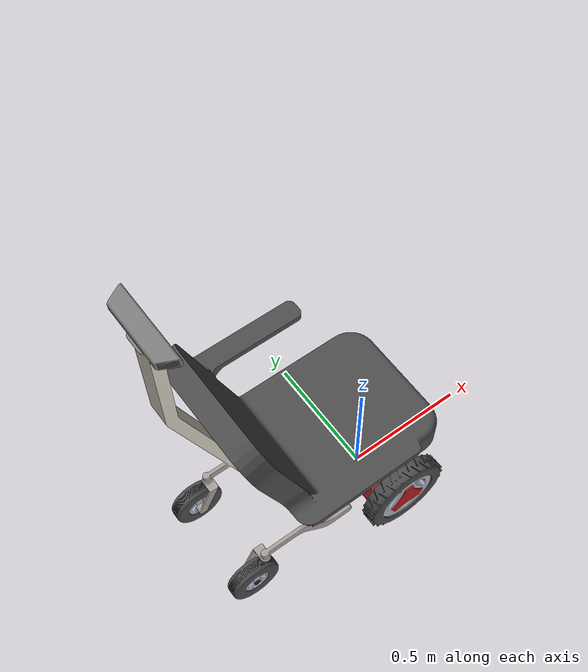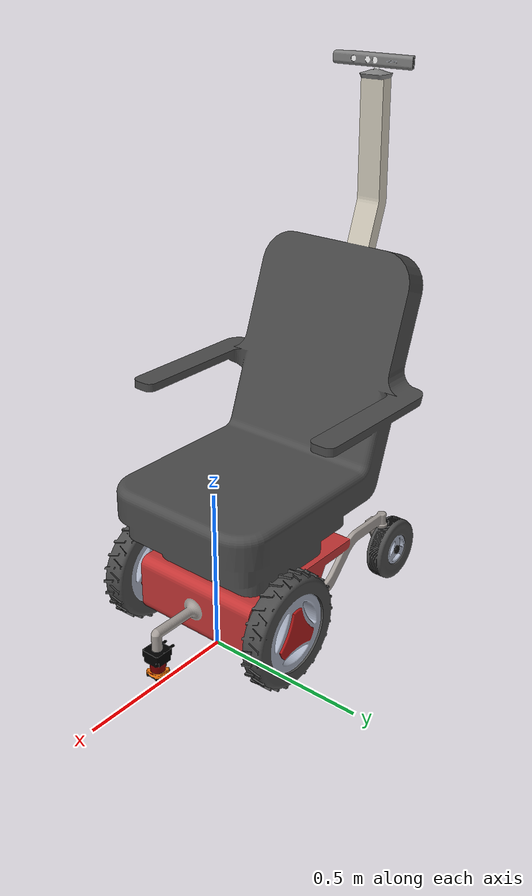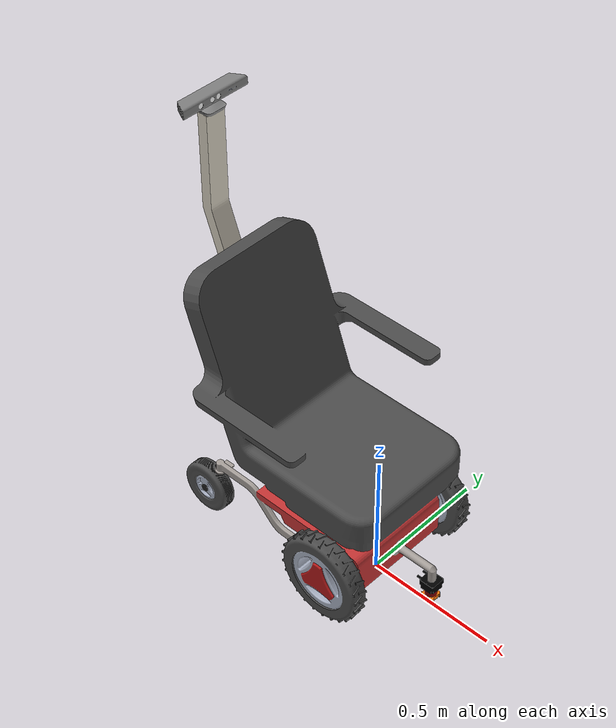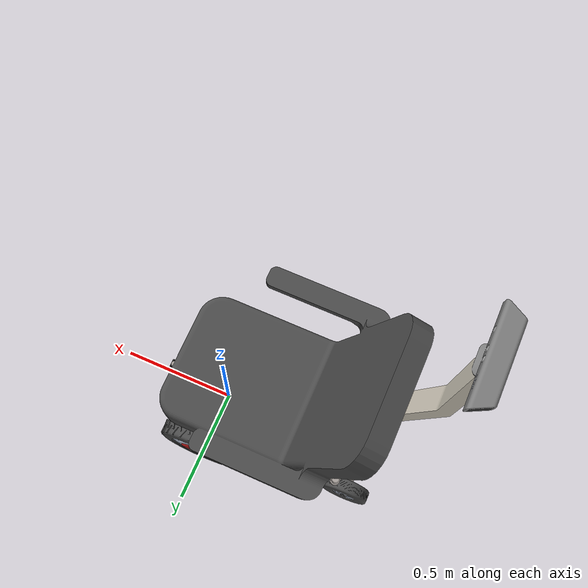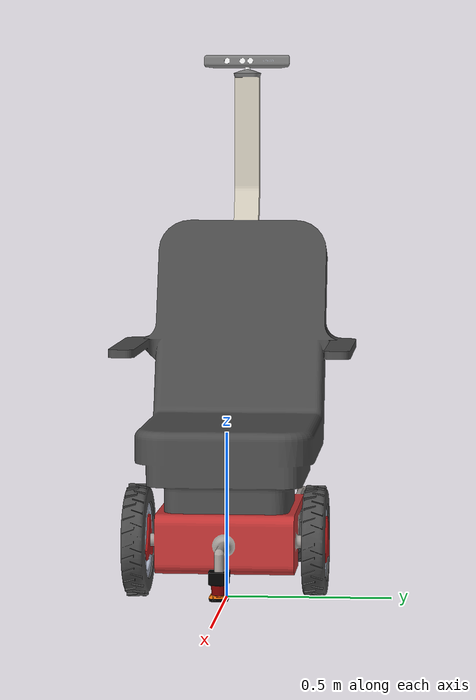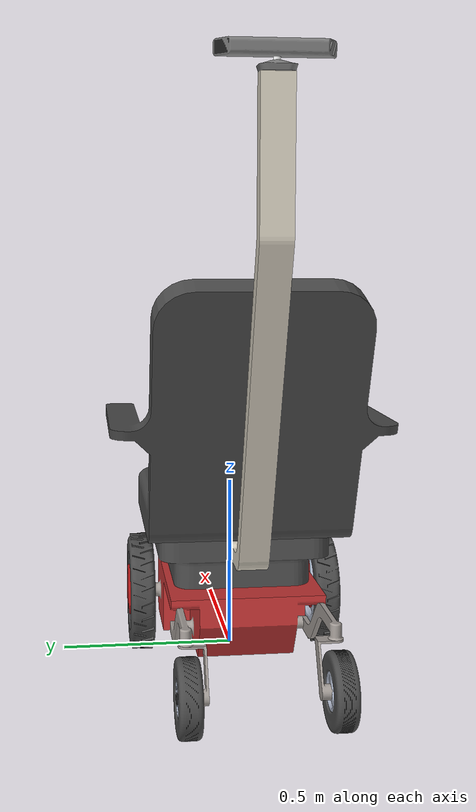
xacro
<?xml version="1.0"?>

<robot name="newchair5"
       xmlns:sensor="http://playerstage.sourceforge.net/gazebo/xmlschema/#sensor"
       xmlns:controller="http://playerstage.sourceforge.net/gazebo/xmlschema/#controller"
       xmlns:interface="http://playerstage.sourceforge.net/gazebo/xmlschema/#interface"
       xmlns:xacro="http://www.ros.org/wiki/xacro" >

  <xacro:include filename="$(find newchair5)/urdf/base.urdf.xacro" />

  <xacro:wheelchair_base />

</robot>

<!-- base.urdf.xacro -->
<robot xmlns:sensor="http://playerstage.sourceforge.net/gazebo/xmlschema/#sensor"
       xmlns:controller="http://playerstage.sourceforge.net/gazebo/xmlschema/#controller"
       xmlns:interface="http://playerstage.sourceforge.net/gazebo/xmlschema/#interface"
       xmlns:xacro="http://www.ros.org/wiki/xacro">

  <xacro:include filename="$(find newchair5)/urdf/wheelchair.gazebo.xacro" />
  <xacro:include filename="$(find newchair5)/urdf/wheelchair.transmission.xacro" />
  <xacro:include filename="$(find newchair5)/urdf/wheelchair.constants.xacro" />
  <xacro:include filename="$(find newchair5)/urdf/wheelchair.kinect.xacro" />
  <xacro:include filename="$(find newchair5)/urdf/wheelchair.hokuyo.xacro" />

  <property name="PI" value="3.1415926535897931" />

  <property name="front_wheel_radius" value="0.17" />
  <property name="front_wheel_base_y" value="0.27" />
  <property name="caster_wheel_radius" value="0.1" />
  <property name="caster_wheel_hub_y" value="0.0" />
  <property name="caster_wheel_hub_x" value="-0.06" />
  <property name="caster_hub_base_x" value="-0.58" />
  <property name="caster_hub_base_y" value="0.19" />
  <property name="caster_hub_base_z" value="-0.07" />
  <property name="kinectx" value="-0.72" />
  <property name="kinecty" value="0.0" />
  <property name="kinectz" value="1.41" />

  <wheelchair_kinect_single parent="base_link" roll="0.025" pitch="0.25" yaw="0.0" x="${kinectx}" y="${kinecty}" z="${kinectz}" />

  <wheelchair_hokuyo parent="base_link" roll="${PI}" pitch="0.0" yaw=" 0.0" x="0.25" y="0.0" z="-0.1" />

  <!-- Macro for front wheel only -->
  <xacro:macro name="front_wheel" params="suffix parent reflect" >

    <joint name="${parent}_${suffix}_front_wheel_joint" type="continuous">
      <axis xyz="0 1 0" />
      <limit effort="100" velocity="100" />
      <dynamics damping="0.0" friction="0.05" />
      <origin xyz="0 ${reflect*front_wheel_base_y} 0" rpy="0 0 0" />
      <parent link="${parent}_link" />
      <child link="${suffix}_front_wheel_link" />
    </joint>

    <link name="${suffix}_front_wheel_link" >
      <xacro:front_wheel_inertia />
      <visual>
        <geometry>

          <mesh filename="package://newchair5/meshes/front_wheel.dae" />
        </geometry>
      </visual>
      <collision>
        <origin xyz="0 0 0" rpy="${PI/2} 0 0" />
        <geometry>
          <cylinder length="0.07" radius="${front_wheel_radius}" />
        </geometry>
      </collision>
    </link>

    <xacro:front_wheel_gazebo suffix="${suffix}" />
    <xacro:front_wheel_transmission parent="${parent}" suffix="${suffix}" reflect="${reflect}" />

  </xacro:macro>

  <!-- Macro for caster wheel only -->
  <xacro:macro name="caster_wheel" params="suffix parent reflect" >

    <joint name="${parent}_${suffix}_caster_wheel_joint" type="continuous" >
      <axis xyz="0 1 0" />

      <dynamics damping="0.0" friction="0.02" />
      <origin xyz="${reflect*caster_wheel_hub_x} 0 0" rpy="0 0 0" />
      <parent link="${parent}_link" />
      <child link="${suffix}_caster_wheel_link" />
    </joint>

    <link name="${suffix}_caster_wheel_link" >
      <xacro:caster_wheel_inertia />
      <visual>
        <geometry>
          <mesh filename="package://newchair5/meshes/caster_wheel.dae" />
        </geometry>
      </visual>
      <collision>
        <origin xyz="0 0 0" rpy="${PI/2} 0 0" />
        <geometry>
          <cylinder length="0.038" radius="${caster_wheel_radius}" />
         </geometry>
      </collision>
    </link>

    <xacro:caster_wheel_gazebo suffix="${suffix}" />

  </xacro:macro>

  <!-- Macro for caster hub only -->
  <xacro:macro name="caster_hub" params="suffix parent *origin reflect" >

    <joint name="${parent}_${suffix}_caster_hub_joint" type="continuous" >
      <axis xyz="0 0 1" />
      <dynamics damping="0.0" friction="0.0" />
      <insert_block name="origin" />
      <parent link="${parent}_link"/>
      <child link="${suffix}_caster_hub_link" />
    </joint>

    <link name="${suffix}_caster_hub_link" value="${suffix}" >

        <xacro:caster_hub_inertia lr="${reflect}"/>

      <visual>
        <geometry>
          <mesh filename="package://newchair5/meshes/caster_hub_${suffix}.dae" />
        </geometry>
      </visual>
      <collision>
        <origin xyz="0 0 0" rpy="0 0 0" />
        <geometry>
          <mesh filename="package://newchair5/meshes/caster_hub_${suffix}.dae" />
        </geometry>
      </collision>
    </link>

    <xacro:caster_hub_gazebo suffix="${suffix}" />

  </xacro:macro>

  <!-- Macro for caster set (caster wheel & hub) -->
  <xacro:macro name="caster_set" params="suffix parent *origin reflect" >

    <xacro:caster_hub suffix="${suffix}" parent="${parent}" reflect="${reflect}">
      <insert_block name="origin" />
    </xacro:caster_hub>

    <xacro:caster_wheel suffix="${suffix}" parent="${suffix}_caster_hub" reflect="${reflect}" />

  </xacro:macro>

  <!-- Macro for wheelchair_base (includes front & caster wheels and wheelchair body) -->
  <xacro:macro name="wheelchair_base" >

    <link name="base_footprint" >
      <visual>
        <origin xyz="0 0 0" rpy="0 0 0" />
        <geometry>
          <box size="0.01 0.01 0.01" />
        </geometry>
      </visual>
    </link>

    <joint name="base_footprint_joint" type="fixed" >
      <origin xyz="0 0 ${front_wheel_radius}" rpy="0 0 0" />
      <child link="base_link" />
      <parent link="base_footprint" />
    </joint>

    <link name="base_link" >
      <xacro:wheelchair_base_inertia />
      <visual>
        <geometry>
          <mesh filename="package://newchair5/meshes/wheelchair_base_seat.dae" />
        </geometry>
      </visual>
      <collision>
        <origin xyz="0 0 0" rpy="0 0 0" />
        <geometry>
          <mesh filename="package://newchair5/meshes/wheelchair_base_seat.dae" />
        </geometry>
      </collision>
    </link>

    <xacro:front_wheel suffix="left" parent="base" reflect="1" />
    <xacro:front_wheel suffix="right" parent="base" reflect="-1" />

    <xacro:caster_set suffix="left" parent="base" reflect="1" >
      <origin xyz="${caster_hub_base_x} ${caster_hub_base_y} ${caster_hub_base_z}"
              rpy="0 0 0" />
    </xacro:caster_set>
    <xacro:caster_set suffix="right" parent="base" reflect="-1" >
      <origin xyz="${caster_hub_base_x} ${-caster_hub_base_y} ${caster_hub_base_z}"
              rpy="0 0 ${PI}" />
    </xacro:caster_set>

    <xacro:wheelchair_base_gazebo diameter="${2*front_wheel_radius}" separation="${2*front_wheel_base_y}" />

  </xacro:macro>

  <!-- Original Testing Macro for front wheels only -->

  <!-- Original Testing Macro for wheelchair_base (includes front & caster wheels and wheelchair body) -->

</robot>

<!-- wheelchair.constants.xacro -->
<robot xmlns:xacro="http://www.ros.org/wiki/xacro">

   <xacro:macro name="front_wheel_inertia" >

      <inertial>
        <mass value="0.5" />
        <origin xyz="0 0 0" />
        <inertia  ixx="0.005" ixy="0.0" ixz="0.0"
                  iyy="0.005" iyz="0.0" izz="0.005" />
      </inertial>

   </xacro:macro>

   <xacro:macro name="caster_wheel_inertia" >

      <inertial>
        <mass value="0.07" />
        <origin xyz="0 0 0" />
        <inertia  ixx="0.001" ixy="0.0" ixz="0.0"
                  iyy="0.001" iyz="0.0" izz="0.001" />
      </inertial>

   </xacro:macro>

   <xacro:macro name="caster_hub_inertia" params="lr">

      <inertial>
        <mass value="0.015" />
        <origin xyz="${lr*-0.043126} 0.030993 0.053064" />
        <inertia  ixx="0.001" ixy="0.0" ixz="0.0"
                  iyy="0.001" iyz="0.0" izz="0.001" />
      </inertial>

   </xacro:macro>

   <xacro:macro name="wheelchair_base_inertia" >

      <inertial>
        <mass value="5.0" />
        <origin xyz="-0.15 0.000000 0.1" />
        <inertia  ixx="0.011469" ixy="0.0" ixz="0.005697"
                  iyy="0.015320" iyz="0.0" izz="0.008542" />
      </inertial>

   </xacro:macro>

</robot>

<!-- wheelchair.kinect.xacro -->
<robot
    xmlns:sensor="http://playerstage.sourceforge.net/gazebo/xmlschema/#sensor"
    xmlns:controller="http://playerstage.sourceforge.net/gazebo/xmlschema/#controller"
    xmlns:interface="http://playerstage.sourceforge.net/gazebo/xmlschema/#interface"
    xmlns:xacro="http://www.ros.org/wiki/xacro">
  <property name="M_PI" value="3.14159"/>

<macro name="wheelchair_kinect_single" params="parent roll pitch yaw x y z">
  <joint name="base_camera_yaw_joint" type="fixed">
    <origin xyz="${x} ${y} ${z}" rpy="0 0 ${yaw}" />
    <parent link="${parent}"/>
    <child link="camera_link_yaw" />
  </joint>

  <link name="camera_link_yaw">
    <inertial>
      <mass value="0.01" />
      <origin xyz="0 0 0" rpy="0.0 0.0 0.0" />
      <inertia ixx="0.001" ixy="0.0" ixz="0.0"
        iyy="0.001" iyz="0.0"
        izz="0.001" />
    </inertial>
  </link>

  <joint name="base_camera_pitch_joint" type="fixed">
    <origin xyz="0 0 0" rpy="0 ${pitch} 0" />
    <parent link="camera_link_yaw"/>
    <child link="camera_link_pitch" />
  </joint>

  <link name="camera_link_pitch">
    <inertial>
      <mass value="0.01" />
      <origin xyz="0 0 0" rpy="0.0 0.0 0.0" />
      <inertia ixx="0.001" ixy="0.0" ixz="0.0"
        iyy="0.001" iyz="0.0"
        izz="0.001" />
    </inertial>
  </link>

  <joint name="base_camera_roll_joint" type="fixed">
    <origin xyz="0 0 0" rpy="${roll} 0 0" />
    <parent link="camera_link_pitch"/>
    <child link="camera_link_roll" />
  </joint>

  <link name="camera_link_roll">
    <inertial>
      <mass value="0.01" />
      <origin xyz="0 0 0" rpy="0.0 0.0 0.0" />
      <inertia ixx="0.001" ixy="0.0" ixz="0.0"
        iyy="0.001" iyz="0.0"
        izz="0.001" />
    </inertial>
  </link>

  <joint name="base_camera_joint" type="fixed">
    <origin xyz="0 0 0" rpy="0 0 0" />
    <parent link="camera_link_roll"/>
    <child link="camera_link" />
  </joint>

  <link name="camera_link" type="fixed">
    <inertial>
      <mass value="0.01" />
      <origin xyz="0 0 0" />
      <inertia ixx="0.001" ixy="0.0" ixz="0.0"
        iyy="0.001" iyz="0.0"
        izz="0.001" />
    </inertial>

    <collision>
      <origin xyz="0.0 0.0 0.0" rpy="0 0 0" />
      <geometry>
        <box size="0.0730 .2760 0.0720"/>
      </geometry>
    </collision>

  </link>

  <joint name="camera_depth_joint" type="fixed">
    <origin xyz="0 0.018 0" rpy="0 0 0" />
    <parent link="camera_link" />
    <child link="camera_depth_frame" />
  </joint>

  <link name="camera_depth_frame">
    <inertial>
      <mass value="0.01" />
      <origin xyz="0 0 0" />
      <inertia ixx="0.001" ixy="0.0" ixz="0.0"
        iyy="0.001" iyz="0.0"
        izz="0.001" />
    </inertial>
  </link>

  <joint name="camera_depth_optical_joint" type="fixed">
    <origin xyz="0 0 0" rpy="${-M_PI/2} 0 ${-M_PI/2}" />
    <parent link="camera_depth_frame" />
    <child link="camera_depth_optical_frame" />
  </joint>

  <link name="camera_depth_optical_frame">
    <inertial>
      <mass value="0.001" />
      <origin xyz="0 0 0" />
      <inertia ixx="0.0001" ixy="0.0" ixz="0.0"
        iyy="0.0001" iyz="0.0"
        izz="0.0001" />
    </inertial>
  </link>

  <joint name="camera_rgb_joint" type="fixed">
    <origin xyz="0 -0.005 0" rpy="0 0 0" />
    <parent link="camera_link" />
    <child link="camera_rgb_frame" />
  </joint>

  <link name="camera_rgb_frame">
    <inertial>
      <mass value="0.001" />
      <origin xyz="0 0 0" />
      <inertia ixx="0.0001" ixy="0.0" ixz="0.0"
        iyy="0.0001" iyz="0.0"
        izz="0.0001" />
    </inertial>
  </link>

  <joint name="camera_rgb_optical_joint" type="fixed">
    <origin xyz="0 0 0" rpy="${-M_PI/2} 0 ${-M_PI/2}" />
    <parent link="camera_rgb_frame" />
    <child link="camera_rgb_optical_frame" />
  </joint>

  <link name="camera_rgb_optical_frame">
    <inertial>
      <mass value="0.001" />
      <origin xyz="0 0 0" />
      <inertia ixx="0.0001" ixy="0.0" ixz="0.0"
        iyy="0.0001" iyz="0.0"
        izz="0.0001" />
    </inertial>
  </link>

  <!-- Kinect sensor for simulation -->
  <gazebo reference="camera_link">
    <sensor type="depth" name="camera">
      <always_on>true</always_on>
      <visualize>true</visualize>
      <camera>
        <horizontal_fov>1.047</horizontal_fov>
        <image>
            <width>640</width>
            <height>480</height>
            <format>R8G8B8</format>
        </image>
        <depth_camera>

        </depth_camera>
        <clip>
            <near>0.1</near>
            <far>6</far>
        </clip>
      </camera>
      <plugin name="kinect_camera_controller" filename="libgazebo_ros_openni_kinect.so">
        <baseline>0.1</baseline>
        <alwaysOn>true</alwaysOn>
        <updateRate>20.0</updateRate>
        <cameraName>camera</cameraName>
        <imageTopicName>/camera/rgb/image_raw</imageTopicName>
        <cameraInfoTopicName>/camera/rgb/camera_info</cameraInfoTopicName>
        <depthImageTopicName>/camera/depth/image_raw</depthImageTopicName>
        <depthImageCameraInfoTopicName>/camera/depth/camera_info</depthImageCameraInfoTopicName>
        <pointCloudTopicName>/camera/depth/points</pointCloudTopicName>
        <frameName>camera_rgb_optical_frame</frameName>
        <pointCloudCutoff>0.5</pointCloudCutoff>
        <distortionK1>0.0</distortionK1>
        <distortionK2>0.0</distortionK2>
        <distortionK3>0.0</distortionK3>
        <distortionT1>0.0</distortionT1>
        <distortionT2>0.0</distortionT2>
        <CxPrime>0</CxPrime>
        <Cx>0</Cx>
        <Cy>0</Cy>
        <focalLength>0</focalLength>
        <hackBaseline>0.07</hackBaseline>
      </plugin>
    </sensor>

  </gazebo>

</macro>

</robot>

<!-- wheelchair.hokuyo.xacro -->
<robot name="sensor_hokuyo"
  xmlns:sensor="http://playerstage.sourceforge.net/gazebo/xmlschema/#sensor"
  xmlns:controller="http://playerstage.sourceforge.net/gazebo/xmlschema/#controller"
  xmlns:interface="http://playerstage.sourceforge.net/gazebo/xmlschema/#interface"
  xmlns:xacro="http://ros.org/wiki/xacro">

 <xacro:macro name="wheelchair_hokuyo" params="parent roll pitch yaw x y z">
  <joint name="hokuyo_joint" type="fixed">
    <axis xyz="0 0 0" />
    <origin xyz="0.26 0 -0.1" rpy="0.005 -0.0173 0"/>
    <parent link="${parent}"/>
    <child link="laser_joint"/>
  </joint>

  <link name="laser_joint">
   <collision>
     <origin xyz="0 0 0" rpy="0 0 0"/>
     <geometry>
        <box size="0.1 0.1 0.1"/>
     </geometry>
   </collision>
   <inertial>
     <mass value="1e-5" />
     <origin xyz="0 0 0" rpy="0 0 0"/>
     <inertia ixx="1e-6" ixy="0" ixz="0" iyy="1e-6" iyz="0" izz="1e-6" />
   </inertial>
 </link>

<gazebo reference="laser_joint">
  <sensor type="gpu_ray" name="head_rplidar_sensor">
    <pose>0 0 0 0 0 0</pose>
    <visualize>true</visualize>
    <update_rate>40</update_rate>
    <ray>
      <scan>
        <horizontal>
          <samples>720</samples>
          <resolution>1</resolution>
          <min_angle>-1.88</min_angle>
          <max_angle>1.88</max_angle>
        </horizontal>
      </scan>
      <range>
        <min>0.3</min>
        <max>50.0</max>
        <resolution>0.01</resolution>
      </range>
      <noise>
        <type>gaussian</type>
        <mean>0.0</mean>
        <stddev>0.01</stddev>
      </noise>
    </ray>
    <plugin name="gazebo_ros_head_rplidar_controller" filename="libgazebo_ros_gpu_laser.so">
      <topicName>/scan</topicName>
      <frameName>laser_joint</frameName>
    </plugin>
  </sensor>
</gazebo>

 </xacro:macro>
  </robot>
